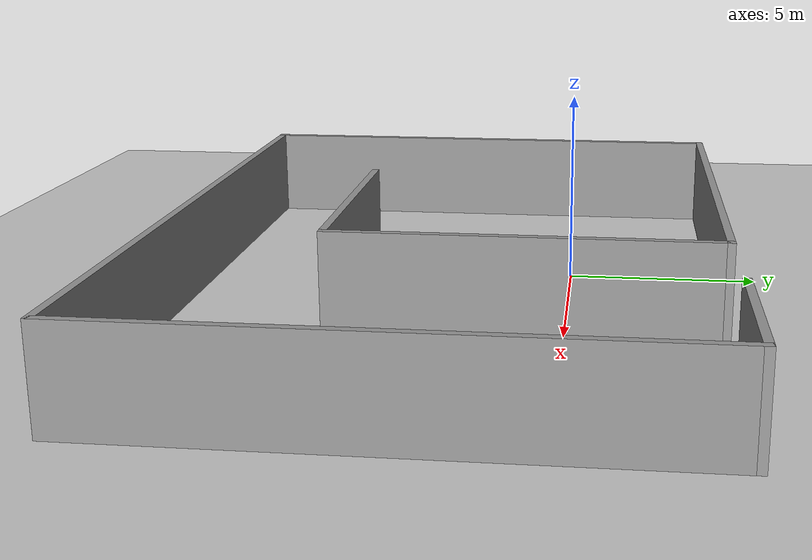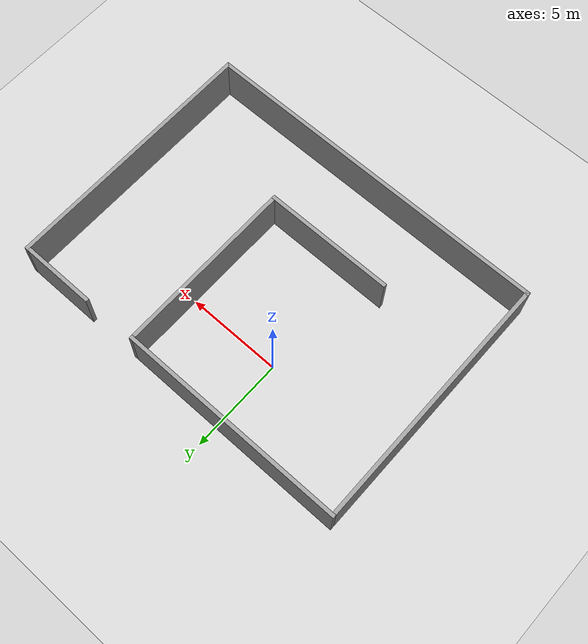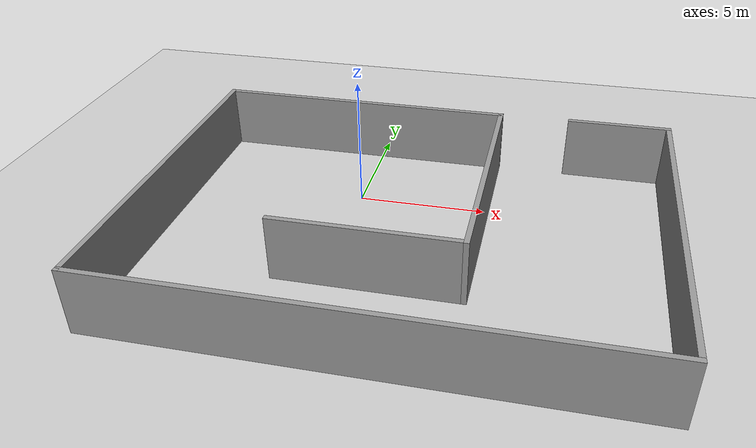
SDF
<?xml version="1.0" ?>
<sdf version="1.4">
  <world name="default">
    <include>
      <uri>model://ground_plane</uri>
    </include>
    <include>
      <uri>model://sun</uri>
    </include>
 <model name='new_world'>
    <link name='Wall_0'>
      <collision name='Wall_0_Collision'>
        <geometry>
          <box>
            <size>6.98 0.2 2.5</size>
          </box>
        </geometry>
        <pose>0 0 1.25 0 -0 0</pose>
      </collision>
      <visual name='Wall_0_Visual'>
        <pose>0 0 1.25 0 -0 0</pose>
        <geometry>
          <box>
            <size>6.98 0.2 2.5</size>
          </box>
        </geometry>
        <material>
          <script>
            <uri>file://media/materials/scripts/gazebo.material</uri>
            <name>Gazebo/Grey</name>
          </script>
        </material>
      </visual>
      <velocity_decay>
        <linear>0</linear>
        <angular>0</angular>
      </velocity_decay>
      <pose>1.71 -5.77 0 0 -0 0</pose>
    </link>
    <link name='Wall_1'>
      <collision name='Wall_1_Collision'>
        <geometry>
          <box>
            <size>9.80033 0.2 2.5</size>
          </box>
        </geometry>
        <pose>0 0 1.25 0 -0 0</pose>
      </collision>
      <visual name='Wall_1_Visual'>
        <pose>0 0 1.25 0 -0 0</pose>
        <geometry>
          <box>
            <size>9.80033 0.2 2.5</size>
          </box>
        </geometry>
        <material>
          <script>
            <uri>file://media/materials/scripts/gazebo.material</uri>
            <name>Gazebo/Grey</name>
          </script>
        </material>
      </visual>
      <velocity_decay>
        <linear>0</linear>
        <angular>0</angular>
      </velocity_decay>
      <pose>5.1 -0.969835 0 0 -0 1.5708</pose>
    </link>
    <link name='Wall_2'>
      <collision name='Wall_2_Collision'>
        <geometry>
          <box>
            <size>12.1618 0.2 2.5</size>
          </box>
        </geometry>
        <pose>0 0 1.25 0 -0 0</pose>
      </collision>
      <visual name='Wall_2_Visual'>
        <pose>0 0 1.25 0 -0 0</pose>
        <geometry>
          <box>
            <size>12.1618 0.2 2.5</size>
          </box>
        </geometry>
        <material>
          <script>
            <uri>file://media/materials/scripts/gazebo.material</uri>
            <name>Gazebo/Grey</name>
          </script>
        </material>
      </visual>
      <velocity_decay>
        <linear>0</linear>
        <angular>0</angular>
      </velocity_decay>
      <pose>-0.880903 3.83033 0 0 -0 3.14159</pose>
    </link>
    <link name='Wall_3'>
      <collision name='Wall_3_Collision'>
        <geometry>
          <box>
            <size>13.879 0.2 2.5</size>
          </box>
        </geometry>
        <pose>0 0 1.25 0 -0 0</pose>
      </collision>
      <visual name='Wall_3_Visual'>
        <pose>0 0 1.25 0 -0 0</pose>
        <geometry>
          <box>
            <size>13.879 0.2 2.5</size>
          </box>
        </geometry>
        <material>
          <script>
            <uri>file://media/materials/scripts/gazebo.material</uri>
            <name>Gazebo/Grey</name>
          </script>
        </material>
      </visual>
      <velocity_decay>
        <linear>0</linear>
        <angular>0</angular>
      </velocity_decay>
      <pose>-6.86181 -3.00917 0 0 0 -1.5708</pose>
    </link>
    <link name='Wall_4'>
      <collision name='Wall_4_Collision'>
        <geometry>
          <box>
            <size>18.9692 0.2 2.5</size>
          </box>
        </geometry>
        <pose>0 0 1.25 0 -0 0</pose>
      </collision>
      <visual name='Wall_4_Visual'>
        <pose>0 0 1.25 0 -0 0</pose>
        <geometry>
          <box>
            <size>18.9692 0.2 2.5</size>
          </box>
        </geometry>
        <material>
          <script>
            <uri>file://media/materials/scripts/gazebo.material</uri>
            <name>Gazebo/Grey</name>
          </script>
        </material>
      </visual>
      <velocity_decay>
        <linear>0</linear>
        <angular>0</angular>
      </velocity_decay>
      <pose>2.5228 -9.84868 0 0 -0 0</pose>
    </link>
    <link name='Wall_5'>
      <collision name='Wall_5_Collision'>
        <geometry>
          <box>
            <size>13.9523 0.2 2.5</size>
          </box>
        </geometry>
        <pose>0 0 1.25 0 -0 0</pose>
      </collision>
      <visual name='Wall_5_Visual'>
        <pose>0 0 1.25 0 -0 0</pose>
        <geometry>
          <box>
            <size>13.9523 0.2 2.5</size>
          </box>
        </geometry>
        <material>
          <script>
            <uri>file://media/materials/scripts/gazebo.material</uri>
            <name>Gazebo/Grey</name>
          </script>
        </material>
      </visual>
      <velocity_decay>
        <linear>0</linear>
        <angular>0</angular>
      </velocity_decay>
      <pose>11.9074 -2.97252 0 0 -0 1.5708</pose>
    </link>
    <link name='Wall_6'>
      <collision name='Wall_6_Collision'>
        <geometry>
          <box>
            <size>4.11023 0.2 2.5</size>
          </box>
        </geometry>
        <pose>0 0 1.25 0 -0 0</pose>
      </collision>
      <visual name='Wall_6_Visual'>
        <pose>0 0 1.25 0 -0 0</pose>
        <geometry>
          <box>
            <size>4.11023 0.2 2.5</size>
          </box>
        </geometry>
        <material>
          <script>
            <uri>file://media/materials/scripts/gazebo.material</uri>
            <name>Gazebo/Grey</name>
          </script>
        </material>
      </visual>
      <velocity_decay>
        <linear>0</linear>
        <angular>0</angular>
      </velocity_decay>
      <pose>9.95229 3.90363 0 0 -0 3.14159</pose>
    </link>
    <static>1</static>
  </model>

  </world>
</sdf>
